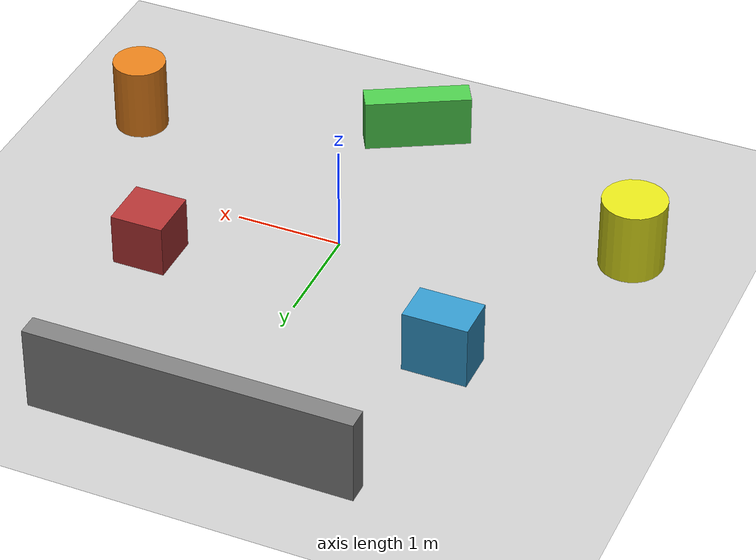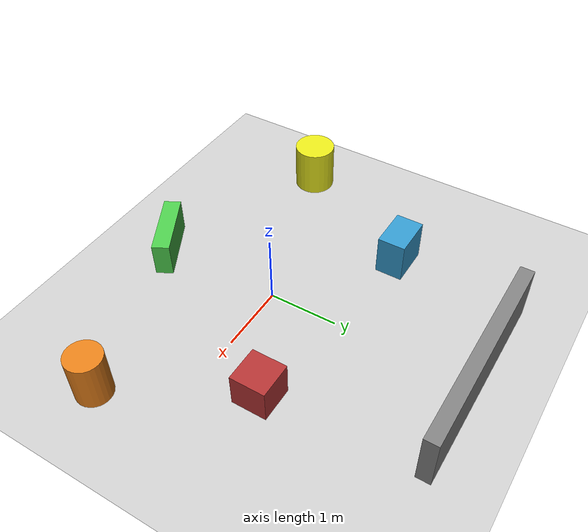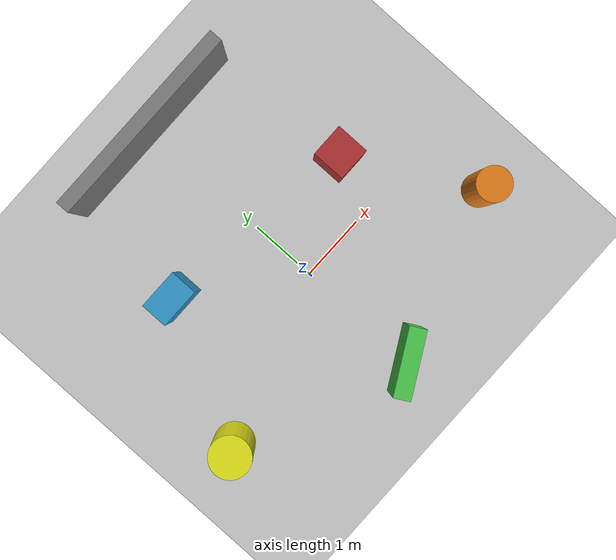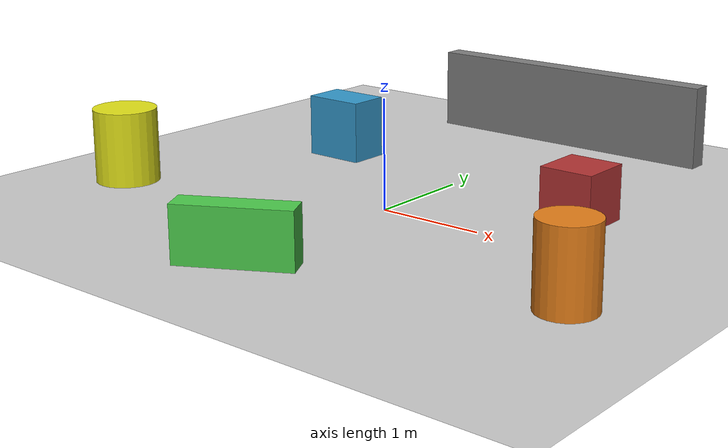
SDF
<?xml version="1.0" ?>
<sdf version="1.6">
  <world name="empty">

    <physics name="1ms" type="ignored">
      <max_step_size>0.004</max_step_size>
      <real_time_factor>1.0</real_time_factor>
    </physics>

    <!-- Gazebo Sim systems -->
    <plugin filename="gz-sim-contact-system" name="gz::sim::systems::Contact" />
    <plugin filename="gz-sim-imu-system" name="gz::sim::systems::Imu" />
    <plugin filename="gz-sim-physics-system" name="gz::sim::systems::Physics" />
    <plugin filename="gz-sim-scene-broadcaster-system" name="gz::sim::systems::SceneBroadcaster" />
    <plugin filename="gz-sim-sensors-system" name="gz::sim::systems::Sensors" />
    <plugin filename="gz-sim-user-commands-system" name="gz::sim::systems::UserCommands" />

    <spherical_coordinates>
      <surface_model>EARTH_WGS84</surface_model>
      <world_frame_orientation>ENU</world_frame_orientation>
      <latitude_deg>50.088384</latitude_deg>
      <longitude_deg>19.939128</longitude_deg>
      <elevation>0</elevation>
      <heading_deg>0</heading_deg>
    </spherical_coordinates>

    <light type="directional" name="sun">
      <cast_shadows>true</cast_shadows>
      <pose>0 0 10 0 0 0</pose>
      <diffuse>0.8 0.8 0.8 1</diffuse>
      <specular>0.2 0.2 0.2 1</specular>
      <attenuation>
        <range>1000</range>
        <constant>0.9</constant>
        <linear>0.01</linear>
        <quadratic>0.001</quadratic>
      </attenuation>
      <direction>-0.5 0.1 -0.9</direction>
    </light>

    <!-- Ground plane -->
    <model name="ground_plane">
      <static>true</static>
      <link name="link">
        <collision name="collision">
          <geometry>
            <plane>
              <normal>0 0 1</normal>
              <size>100 100</size>
            </plane>
          </geometry>
        </collision>
        <visual name="visual">
          <geometry>
            <plane>
              <normal>0 0 1</normal>
              <size>100 100</size>
            </plane>
          </geometry>
          <material>
            <ambient>0.8 0.8 0.8 1</ambient>
            <diffuse>0.8 0.8 0.8 1</diffuse>
            <specular>0.8 0.8 0.8 1</specular>
          </material>
        </visual>
      </link>
    </model>

    <!-- Obstacles simples, sans mesh externe -->

    <model name="box_obstacle_1">
      <static>true</static>
      <pose>1.5 0.8 0.25 0 0 0</pose>
      <link name="link">
        <collision name="collision">
          <geometry>
            <box>
              <size>0.5 0.5 0.5</size>
            </box>
          </geometry>
        </collision>
        <visual name="visual">
          <geometry>
            <box>
              <size>0.5 0.5 0.5</size>
            </box>
          </geometry>
          <material>
            <ambient>0.7 0.2 0.2 1</ambient>
            <diffuse>0.7 0.2 0.2 1</diffuse>
          </material>
        </visual>
      </link>
    </model>

    <model name="box_obstacle_2">
      <static>true</static>
      <pose>-1.5 1.2 0.3 0 0 0</pose>
      <link name="link">
        <collision name="collision">
          <geometry>
            <box>
              <size>0.6 0.4 0.6</size>
            </box>
          </geometry>
        </collision>
        <visual name="visual">
          <geometry>
            <box>
              <size>0.6 0.4 0.6</size>
            </box>
          </geometry>
          <material>
            <ambient>0.2 0.6 0.8 1</ambient>
            <diffuse>0.2 0.6 0.8 1</diffuse>
          </material>
        </visual>
      </link>
    </model>

    <model name="box_obstacle_3">
      <static>true</static>
      <pose>0.0 -1.8 0.25 0 0 0.5</pose>
      <link name="link">
        <collision name="collision">
          <geometry>
            <box>
              <size>1.0 0.25 0.5</size>
            </box>
          </geometry>
        </collision>
        <visual name="visual">
          <geometry>
            <box>
              <size>1.0 0.25 0.5</size>
            </box>
          </geometry>
          <material>
            <ambient>0.3 0.8 0.3 1</ambient>
            <diffuse>0.3 0.8 0.3 1</diffuse>
          </material>
        </visual>
      </link>
    </model>

    <model name="cylinder_obstacle_1">
      <static>true</static>
      <pose>2.5 -1.0 0.35 0 0 0</pose>
      <link name="link">
        <collision name="collision">
          <geometry>
            <cylinder>
              <radius>0.25</radius>
              <length>0.7</length>
            </cylinder>
          </geometry>
        </collision>
        <visual name="visual">
          <geometry>
            <cylinder>
              <radius>0.25</radius>
              <length>0.7</length>
            </cylinder>
          </geometry>
          <material>
            <ambient>0.9 0.5 0.1 1</ambient>
            <diffuse>0.9 0.5 0.1 1</diffuse>
          </material>
        </visual>
      </link>
    </model>

    <model name="cylinder_obstacle_2">
      <static>true</static>
      <pose>-2.5 -0.8 0.35 0 0 0</pose>
      <link name="link">
        <collision name="collision">
          <geometry>
            <cylinder>
              <radius>0.30</radius>
              <length>0.7</length>
            </cylinder>
          </geometry>
        </collision>
        <visual name="visual">
          <geometry>
            <cylinder>
              <radius>0.30</radius>
              <length>0.7</length>
            </cylinder>
          </geometry>
          <material>
            <ambient>0.9 0.9 0.1 1</ambient>
            <diffuse>0.9 0.9 0.1 1</diffuse>
          </material>
        </visual>
      </link>
    </model>

    <model name="wall_obstacle_1">
      <static>true</static>
      <pose>0.0 3.0 0.4 0 0 0</pose>
      <link name="link">
        <collision name="collision">
          <geometry>
            <box>
              <size>3.0 0.2 0.8</size>
            </box>
          </geometry>
        </collision>
        <visual name="visual">
          <geometry>
            <box>
              <size>3.0 0.2 0.8</size>
            </box>
          </geometry>
          <material>
            <ambient>0.5 0.5 0.5 1</ambient>
            <diffuse>0.5 0.5 0.5 1</diffuse>
          </material>
        </visual>
      </link>
    </model>

  </world>
</sdf>
